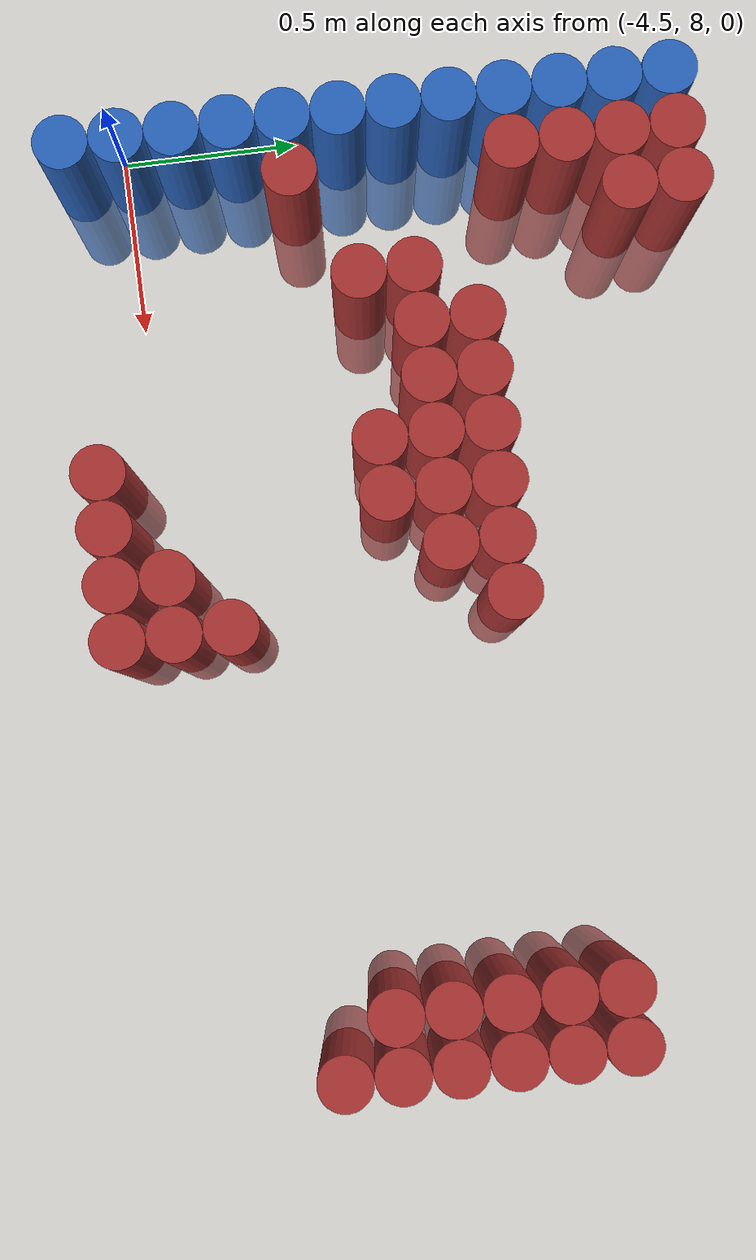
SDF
<sdf version="1.6">
 <world name="default">
  <model name="ground_plane">
   <static>1</static>
   <link name="link">
    <collision name="collision">
     <geometry><plane><normal>0 0 1</normal><size>100 100</size></plane></geometry>
     <surface><friction><ode><mu>100</mu><mu2>50</mu2></ode></friction></surface>
    </collision>
    <visual name="visual">
     <cast_shadows>0</cast_shadows>
     <geometry><plane><normal>0 0 1</normal><size>100 100</size></plane></geometry>
     <material>
      <script><uri>file://media/materials/scripts/gazebo.material</uri><name>Gazebo/Grey</name></script>
     </material>
    </visual>
   </link>
  </model>
  <model name="unit_cylinder_114">
   <static>1</static>
   <pose>-4.425000 7.875000 0.000000 0.000000 0.000000 0.000000</pose>
   <link name="link">
    <inertial>
     <mass>1</mass>
     <inertia><ixx>0.145833</ixx><ixy>0</ixy><ixz>0</ixz><iyy>0.145833</iyy><iyz>0</iyz><izz>0.125</izz></inertia>
    </inertial>
    <collision name="collision">
     <geometry><cylinder><radius>0.075000</radius><length>1</length></cylinder></geometry>
    </collision>
    <visual name="visual">
     <geometry><cylinder><radius>0.075000</radius><length>1</length></cylinder></geometry>
     <material>
      <ambient>0.152000 0.379000 0.720000 1</ambient>
      <diffuse>0.152000 0.379000 0.720000 1</diffuse>
     </material>
     <material>
      <script><name>Gazebo/Grey</name><uri>file://media/materials/scripts/gazebo.material</uri></script>
     </material>
    </visual>
   </link>
  </model>
  <model name="unit_cylinder_115">
   <static>1</static>
   <pose>-4.425000 8.025000 0.000000 0.000000 0.000000 0.000000</pose>
   <link name="link">
    <inertial>
     <mass>1</mass>
     <inertia><ixx>0.145833</ixx><ixy>0</ixy><ixz>0</ixz><iyy>0.145833</iyy><iyz>0</iyz><izz>0.125</izz></inertia>
    </inertial>
    <collision name="collision">
     <geometry><cylinder><radius>0.075000</radius><length>1</length></cylinder></geometry>
    </collision>
    <visual name="visual">
     <geometry><cylinder><radius>0.075000</radius><length>1</length></cylinder></geometry>
     <material>
      <ambient>0.152000 0.379000 0.720000 1</ambient>
      <diffuse>0.152000 0.379000 0.720000 1</diffuse>
     </material>
     <material>
      <script><name>Gazebo/Grey</name><uri>file://media/materials/scripts/gazebo.material</uri></script>
     </material>
    </visual>
   </link>
  </model>
  <model name="unit_cylinder_116">
   <static>1</static>
   <pose>-4.425000 8.175000 0.000000 0.000000 0.000000 0.000000</pose>
   <link name="link">
    <inertial>
     <mass>1</mass>
     <inertia><ixx>0.145833</ixx><ixy>0</ixy><ixz>0</ixz><iyy>0.145833</iyy><iyz>0</iyz><izz>0.125</izz></inertia>
    </inertial>
    <collision name="collision">
     <geometry><cylinder><radius>0.075000</radius><length>1</length></cylinder></geometry>
    </collision>
    <visual name="visual">
     <geometry><cylinder><radius>0.075000</radius><length>1</length></cylinder></geometry>
     <material>
      <ambient>0.152000 0.379000 0.720000 1</ambient>
      <diffuse>0.152000 0.379000 0.720000 1</diffuse>
     </material>
     <material>
      <script><name>Gazebo/Grey</name><uri>file://media/materials/scripts/gazebo.material</uri></script>
     </material>
    </visual>
   </link>
  </model>
  <model name="unit_cylinder_117">
   <static>1</static>
   <pose>-4.425000 8.325000 0.000000 0.000000 0.000000 0.000000</pose>
   <link name="link">
    <inertial>
     <mass>1</mass>
     <inertia><ixx>0.145833</ixx><ixy>0</ixy><ixz>0</ixz><iyy>0.145833</iyy><iyz>0</iyz><izz>0.125</izz></inertia>
    </inertial>
    <collision name="collision">
     <geometry><cylinder><radius>0.075000</radius><length>1</length></cylinder></geometry>
    </collision>
    <visual name="visual">
     <geometry><cylinder><radius>0.075000</radius><length>1</length></cylinder></geometry>
     <material>
      <ambient>0.152000 0.379000 0.720000 1</ambient>
      <diffuse>0.152000 0.379000 0.720000 1</diffuse>
     </material>
     <material>
      <script><name>Gazebo/Grey</name><uri>file://media/materials/scripts/gazebo.material</uri></script>
     </material>
    </visual>
   </link>
  </model>
  <model name="unit_cylinder_118">
   <static>1</static>
   <pose>-4.425000 8.475000 0.000000 0.000000 0.000000 0.000000</pose>
   <link name="link">
    <inertial>
     <mass>1</mass>
     <inertia><ixx>0.145833</ixx><ixy>0</ixy><ixz>0</ixz><iyy>0.145833</iyy><iyz>0</iyz><izz>0.125</izz></inertia>
    </inertial>
    <collision name="collision">
     <geometry><cylinder><radius>0.075000</radius><length>1</length></cylinder></geometry>
    </collision>
    <visual name="visual">
     <geometry><cylinder><radius>0.075000</radius><length>1</length></cylinder></geometry>
     <material>
      <ambient>0.152000 0.379000 0.720000 1</ambient>
      <diffuse>0.152000 0.379000 0.720000 1</diffuse>
     </material>
     <material>
      <script><name>Gazebo/Grey</name><uri>file://media/materials/scripts/gazebo.material</uri></script>
     </material>
    </visual>
   </link>
  </model>
  <model name="unit_cylinder_119">
   <static>1</static>
   <pose>-4.425000 8.625000 0.000000 0.000000 0.000000 0.000000</pose>
   <link name="link">
    <inertial>
     <mass>1</mass>
     <inertia><ixx>0.145833</ixx><ixy>0</ixy><ixz>0</ixz><iyy>0.145833</iyy><iyz>0</iyz><izz>0.125</izz></inertia>
    </inertial>
    <collision name="collision">
     <geometry><cylinder><radius>0.075000</radius><length>1</length></cylinder></geometry>
    </collision>
    <visual name="visual">
     <geometry><cylinder><radius>0.075000</radius><length>1</length></cylinder></geometry>
     <material>
      <ambient>0.152000 0.379000 0.720000 1</ambient>
      <diffuse>0.152000 0.379000 0.720000 1</diffuse>
     </material>
     <material>
      <script><name>Gazebo/Grey</name><uri>file://media/materials/scripts/gazebo.material</uri></script>
     </material>
    </visual>
   </link>
  </model>
  <model name="unit_cylinder_120">
   <static>1</static>
   <pose>-4.425000 8.775000 0.000000 0.000000 0.000000 0.000000</pose>
   <link name="link">
    <inertial>
     <mass>1</mass>
     <inertia><ixx>0.145833</ixx><ixy>0</ixy><ixz>0</ixz><iyy>0.145833</iyy><iyz>0</iyz><izz>0.125</izz></inertia>
    </inertial>
    <collision name="collision">
     <geometry><cylinder><radius>0.075000</radius><length>1</length></cylinder></geometry>
    </collision>
    <visual name="visual">
     <geometry><cylinder><radius>0.075000</radius><length>1</length></cylinder></geometry>
     <material>
      <ambient>0.152000 0.379000 0.720000 1</ambient>
      <diffuse>0.152000 0.379000 0.720000 1</diffuse>
     </material>
     <material>
      <script><name>Gazebo/Grey</name><uri>file://media/materials/scripts/gazebo.material</uri></script>
     </material>
    </visual>
   </link>
  </model>
  <model name="unit_cylinder_121">
   <static>1</static>
   <pose>-4.425000 8.925000 0.000000 0.000000 0.000000 0.000000</pose>
   <link name="link">
    <inertial>
     <mass>1</mass>
     <inertia><ixx>0.145833</ixx><ixy>0</ixy><ixz>0</ixz><iyy>0.145833</iyy><iyz>0</iyz><izz>0.125</izz></inertia>
    </inertial>
    <collision name="collision">
     <geometry><cylinder><radius>0.075000</radius><length>1</length></cylinder></geometry>
    </collision>
    <visual name="visual">
     <geometry><cylinder><radius>0.075000</radius><length>1</length></cylinder></geometry>
     <material>
      <ambient>0.152000 0.379000 0.720000 1</ambient>
      <diffuse>0.152000 0.379000 0.720000 1</diffuse>
     </material>
     <material>
      <script><name>Gazebo/Grey</name><uri>file://media/materials/scripts/gazebo.material</uri></script>
     </material>
    </visual>
   </link>
  </model>
  <model name="unit_cylinder_122">
   <static>1</static>
   <pose>-4.425000 9.075000 0.000000 0.000000 0.000000 0.000000</pose>
   <link name="link">
    <inertial>
     <mass>1</mass>
     <inertia><ixx>0.145833</ixx><ixy>0</ixy><ixz>0</ixz><iyy>0.145833</iyy><iyz>0</iyz><izz>0.125</izz></inertia>
    </inertial>
    <collision name="collision">
     <geometry><cylinder><radius>0.075000</radius><length>1</length></cylinder></geometry>
    </collision>
    <visual name="visual">
     <geometry><cylinder><radius>0.075000</radius><length>1</length></cylinder></geometry>
     <material>
      <ambient>0.152000 0.379000 0.720000 1</ambient>
      <diffuse>0.152000 0.379000 0.720000 1</diffuse>
     </material>
     <material>
      <script><name>Gazebo/Grey</name><uri>file://media/materials/scripts/gazebo.material</uri></script>
     </material>
    </visual>
   </link>
  </model>
  <model name="unit_cylinder_123">
   <static>1</static>
   <pose>-4.425000 9.225000 0.000000 0.000000 0.000000 0.000000</pose>
   <link name="link">
    <inertial>
     <mass>1</mass>
     <inertia><ixx>0.145833</ixx><ixy>0</ixy><ixz>0</ixz><iyy>0.145833</iyy><iyz>0</iyz><izz>0.125</izz></inertia>
    </inertial>
    <collision name="collision">
     <geometry><cylinder><radius>0.075000</radius><length>1</length></cylinder></geometry>
    </collision>
    <visual name="visual">
     <geometry><cylinder><radius>0.075000</radius><length>1</length></cylinder></geometry>
     <material>
      <ambient>0.152000 0.379000 0.720000 1</ambient>
      <diffuse>0.152000 0.379000 0.720000 1</diffuse>
     </material>
     <material>
      <script><name>Gazebo/Grey</name><uri>file://media/materials/scripts/gazebo.material</uri></script>
     </material>
    </visual>
   </link>
  </model>
  <model name="unit_cylinder_124">
   <static>1</static>
   <pose>-4.425000 9.375000 0.000000 0.000000 0.000000 0.000000</pose>
   <link name="link">
    <inertial>
     <mass>1</mass>
     <inertia><ixx>0.145833</ixx><ixy>0</ixy><ixz>0</ixz><iyy>0.145833</iyy><iyz>0</iyz><izz>0.125</izz></inertia>
    </inertial>
    <collision name="collision">
     <geometry><cylinder><radius>0.075000</radius><length>1</length></cylinder></geometry>
    </collision>
    <visual name="visual">
     <geometry><cylinder><radius>0.075000</radius><length>1</length></cylinder></geometry>
     <material>
      <ambient>0.152000 0.379000 0.720000 1</ambient>
      <diffuse>0.152000 0.379000 0.720000 1</diffuse>
     </material>
     <material>
      <script><name>Gazebo/Grey</name><uri>file://media/materials/scripts/gazebo.material</uri></script>
     </material>
    </visual>
   </link>
  </model>
  <model name="unit_cylinder_125">
   <static>1</static>
   <pose>-4.425000 9.525000 0.000000 0.000000 0.000000 0.000000</pose>
   <link name="link">
    <inertial>
     <mass>1</mass>
     <inertia><ixx>0.145833</ixx><ixy>0</ixy><ixz>0</ixz><iyy>0.145833</iyy><iyz>0</iyz><izz>0.125</izz></inertia>
    </inertial>
    <collision name="collision">
     <geometry><cylinder><radius>0.075000</radius><length>1</length></cylinder></geometry>
    </collision>
    <visual name="visual">
     <geometry><cylinder><radius>0.075000</radius><length>1</length></cylinder></geometry>
     <material>
      <ambient>0.152000 0.379000 0.720000 1</ambient>
      <diffuse>0.152000 0.379000 0.720000 1</diffuse>
     </material>
     <material>
      <script><name>Gazebo/Grey</name><uri>file://media/materials/scripts/gazebo.material</uri></script>
     </material>
    </visual>
   </link>
  </model>
  <model name="unit_cylinder_138">
   <static>1</static>
   <pose>-4.275000 8.475000 0.000000 0.000000 0.000000 0.000000</pose>
   <link name="link">
    <inertial>
     <mass>1</mass>
     <inertia><ixx>0.145833</ixx><ixy>0</ixy><ixz>0</ixz><iyy>0.145833</iyy><iyz>0</iyz><izz>0.125</izz></inertia>
    </inertial>
    <collision name="collision">
     <geometry><cylinder><radius>0.075000</radius><length>1</length></cylinder></geometry>
    </collision>
    <visual name="visual">
     <geometry><cylinder><radius>0.075000</radius><length>1</length></cylinder></geometry>
     <material>
      <ambient>0.648000 0.192000 0.192000 1</ambient>
      <diffuse>0.648000 0.192000 0.192000 1</diffuse>
     </material>
     <material>
      <script><name>Gazebo/Grey</name><uri>file://media/materials/scripts/gazebo.material</uri></script>
     </material>
    </visual>
   </link>
  </model>
  <model name="unit_cylinder_139">
   <static>1</static>
   <pose>-4.275000 9.075000 0.000000 0.000000 0.000000 0.000000</pose>
   <link name="link">
    <inertial>
     <mass>1</mass>
     <inertia><ixx>0.145833</ixx><ixy>0</ixy><ixz>0</ixz><iyy>0.145833</iyy><iyz>0</iyz><izz>0.125</izz></inertia>
    </inertial>
    <collision name="collision">
     <geometry><cylinder><radius>0.075000</radius><length>1</length></cylinder></geometry>
    </collision>
    <visual name="visual">
     <geometry><cylinder><radius>0.075000</radius><length>1</length></cylinder></geometry>
     <material>
      <ambient>0.648000 0.192000 0.192000 1</ambient>
      <diffuse>0.648000 0.192000 0.192000 1</diffuse>
     </material>
     <material>
      <script><name>Gazebo/Grey</name><uri>file://media/materials/scripts/gazebo.material</uri></script>
     </material>
    </visual>
   </link>
  </model>
  <model name="unit_cylinder_140">
   <static>1</static>
   <pose>-4.275000 9.225000 0.000000 0.000000 0.000000 0.000000</pose>
   <link name="link">
    <inertial>
     <mass>1</mass>
     <inertia><ixx>0.145833</ixx><ixy>0</ixy><ixz>0</ixz><iyy>0.145833</iyy><iyz>0</iyz><izz>0.125</izz></inertia>
    </inertial>
    <collision name="collision">
     <geometry><cylinder><radius>0.075000</radius><length>1</length></cylinder></geometry>
    </collision>
    <visual name="visual">
     <geometry><cylinder><radius>0.075000</radius><length>1</length></cylinder></geometry>
     <material>
      <ambient>0.648000 0.192000 0.192000 1</ambient>
      <diffuse>0.648000 0.192000 0.192000 1</diffuse>
     </material>
     <material>
      <script><name>Gazebo/Grey</name><uri>file://media/materials/scripts/gazebo.material</uri></script>
     </material>
    </visual>
   </link>
  </model>
  <model name="unit_cylinder_141">
   <static>1</static>
   <pose>-4.275000 9.375000 0.000000 0.000000 0.000000 0.000000</pose>
   <link name="link">
    <inertial>
     <mass>1</mass>
     <inertia><ixx>0.145833</ixx><ixy>0</ixy><ixz>0</ixz><iyy>0.145833</iyy><iyz>0</iyz><izz>0.125</izz></inertia>
    </inertial>
    <collision name="collision">
     <geometry><cylinder><radius>0.075000</radius><length>1</length></cylinder></geometry>
    </collision>
    <visual name="visual">
     <geometry><cylinder><radius>0.075000</radius><length>1</length></cylinder></geometry>
     <material>
      <ambient>0.648000 0.192000 0.192000 1</ambient>
      <diffuse>0.648000 0.192000 0.192000 1</diffuse>
     </material>
     <material>
      <script><name>Gazebo/Grey</name><uri>file://media/materials/scripts/gazebo.material</uri></script>
     </material>
    </visual>
   </link>
  </model>
  <model name="unit_cylinder_142">
   <static>1</static>
   <pose>-4.275000 9.525000 0.000000 0.000000 0.000000 0.000000</pose>
   <link name="link">
    <inertial>
     <mass>1</mass>
     <inertia><ixx>0.145833</ixx><ixy>0</ixy><ixz>0</ixz><iyy>0.145833</iyy><iyz>0</iyz><izz>0.125</izz></inertia>
    </inertial>
    <collision name="collision">
     <geometry><cylinder><radius>0.075000</radius><length>1</length></cylinder></geometry>
    </collision>
    <visual name="visual">
     <geometry><cylinder><radius>0.075000</radius><length>1</length></cylinder></geometry>
     <material>
      <ambient>0.648000 0.192000 0.192000 1</ambient>
      <diffuse>0.648000 0.192000 0.192000 1</diffuse>
     </material>
     <material>
      <script><name>Gazebo/Grey</name><uri>file://media/materials/scripts/gazebo.material</uri></script>
     </material>
    </visual>
   </link>
  </model>
  <model name="unit_cylinder_150">
   <static>1</static>
   <pose>-4.125000 9.375000 0.000000 0.000000 0.000000 0.000000</pose>
   <link name="link">
    <inertial>
     <mass>1</mass>
     <inertia><ixx>0.145833</ixx><ixy>0</ixy><ixz>0</ixz><iyy>0.145833</iyy><iyz>0</iyz><izz>0.125</izz></inertia>
    </inertial>
    <collision name="collision">
     <geometry><cylinder><radius>0.075000</radius><length>1</length></cylinder></geometry>
    </collision>
    <visual name="visual">
     <geometry><cylinder><radius>0.075000</radius><length>1</length></cylinder></geometry>
     <material>
      <ambient>0.648000 0.192000 0.192000 1</ambient>
      <diffuse>0.648000 0.192000 0.192000 1</diffuse>
     </material>
     <material>
      <script><name>Gazebo/Grey</name><uri>file://media/materials/scripts/gazebo.material</uri></script>
     </material>
    </visual>
   </link>
  </model>
  <model name="unit_cylinder_151">
   <static>1</static>
   <pose>-4.125000 9.525000 0.000000 0.000000 0.000000 0.000000</pose>
   <link name="link">
    <inertial>
     <mass>1</mass>
     <inertia><ixx>0.145833</ixx><ixy>0</ixy><ixz>0</ixz><iyy>0.145833</iyy><iyz>0</iyz><izz>0.125</izz></inertia>
    </inertial>
    <collision name="collision">
     <geometry><cylinder><radius>0.075000</radius><length>1</length></cylinder></geometry>
    </collision>
    <visual name="visual">
     <geometry><cylinder><radius>0.075000</radius><length>1</length></cylinder></geometry>
     <material>
      <ambient>0.648000 0.192000 0.192000 1</ambient>
      <diffuse>0.648000 0.192000 0.192000 1</diffuse>
     </material>
     <material>
      <script><name>Gazebo/Grey</name><uri>file://media/materials/scripts/gazebo.material</uri></script>
     </material>
    </visual>
   </link>
  </model>
  <model name="unit_cylinder_156">
   <static>1</static>
   <pose>-3.975000 8.625000 0.000000 0.000000 0.000000 0.000000</pose>
   <link name="link">
    <inertial>
     <mass>1</mass>
     <inertia><ixx>0.145833</ixx><ixy>0</ixy><ixz>0</ixz><iyy>0.145833</iyy><iyz>0</iyz><izz>0.125</izz></inertia>
    </inertial>
    <collision name="collision">
     <geometry><cylinder><radius>0.075000</radius><length>1</length></cylinder></geometry>
    </collision>
    <visual name="visual">
     <geometry><cylinder><radius>0.075000</radius><length>1</length></cylinder></geometry>
     <material>
      <ambient>0.648000 0.192000 0.192000 1</ambient>
      <diffuse>0.648000 0.192000 0.192000 1</diffuse>
     </material>
     <material>
      <script><name>Gazebo/Grey</name><uri>file://media/materials/scripts/gazebo.material</uri></script>
     </material>
    </visual>
   </link>
  </model>
  <model name="unit_cylinder_157">
   <static>1</static>
   <pose>-3.975000 8.775000 0.000000 0.000000 0.000000 0.000000</pose>
   <link name="link">
    <inertial>
     <mass>1</mass>
     <inertia><ixx>0.145833</ixx><ixy>0</ixy><ixz>0</ixz><iyy>0.145833</iyy><iyz>0</iyz><izz>0.125</izz></inertia>
    </inertial>
    <collision name="collision">
     <geometry><cylinder><radius>0.075000</radius><length>1</length></cylinder></geometry>
    </collision>
    <visual name="visual">
     <geometry><cylinder><radius>0.075000</radius><length>1</length></cylinder></geometry>
     <material>
      <ambient>0.648000 0.192000 0.192000 1</ambient>
      <diffuse>0.648000 0.192000 0.192000 1</diffuse>
     </material>
     <material>
      <script><name>Gazebo/Grey</name><uri>file://media/materials/scripts/gazebo.material</uri></script>
     </material>
    </visual>
   </link>
  </model>
  <model name="unit_cylinder_161">
   <static>1</static>
   <pose>-3.825000 8.775000 0.000000 0.000000 0.000000 0.000000</pose>
   <link name="link">
    <inertial>
     <mass>1</mass>
     <inertia><ixx>0.145833</ixx><ixy>0</ixy><ixz>0</ixz><iyy>0.145833</iyy><iyz>0</iyz><izz>0.125</izz></inertia>
    </inertial>
    <collision name="collision">
     <geometry><cylinder><radius>0.075000</radius><length>1</length></cylinder></geometry>
    </collision>
    <visual name="visual">
     <geometry><cylinder><radius>0.075000</radius><length>1</length></cylinder></geometry>
     <material>
      <ambient>0.648000 0.192000 0.192000 1</ambient>
      <diffuse>0.648000 0.192000 0.192000 1</diffuse>
     </material>
     <material>
      <script><name>Gazebo/Grey</name><uri>file://media/materials/scripts/gazebo.material</uri></script>
     </material>
    </visual>
   </link>
  </model>
  <model name="unit_cylinder_162">
   <static>1</static>
   <pose>-3.825000 8.925000 0.000000 0.000000 0.000000 0.000000</pose>
   <link name="link">
    <inertial>
     <mass>1</mass>
     <inertia><ixx>0.145833</ixx><ixy>0</ixy><ixz>0</ixz><iyy>0.145833</iyy><iyz>0</iyz><izz>0.125</izz></inertia>
    </inertial>
    <collision name="collision">
     <geometry><cylinder><radius>0.075000</radius><length>1</length></cylinder></geometry>
    </collision>
    <visual name="visual">
     <geometry><cylinder><radius>0.075000</radius><length>1</length></cylinder></geometry>
     <material>
      <ambient>0.648000 0.192000 0.192000 1</ambient>
      <diffuse>0.648000 0.192000 0.192000 1</diffuse>
     </material>
     <material>
      <script><name>Gazebo/Grey</name><uri>file://media/materials/scripts/gazebo.material</uri></script>
     </material>
    </visual>
   </link>
  </model>
  <model name="unit_cylinder_170">
   <static>1</static>
   <pose>-3.675000 8.775000 0.000000 0.000000 0.000000 0.000000</pose>
   <link name="link">
    <inertial>
     <mass>1</mass>
     <inertia><ixx>0.145833</ixx><ixy>0</ixy><ixz>0</ixz><iyy>0.145833</iyy><iyz>0</iyz><izz>0.125</izz></inertia>
    </inertial>
    <collision name="collision">
     <geometry><cylinder><radius>0.075000</radius><length>1</length></cylinder></geometry>
    </collision>
    <visual name="visual">
     <geometry><cylinder><radius>0.075000</radius><length>1</length></cylinder></geometry>
     <material>
      <ambient>0.648000 0.192000 0.192000 1</ambient>
      <diffuse>0.648000 0.192000 0.192000 1</diffuse>
     </material>
     <material>
      <script><name>Gazebo/Grey</name><uri>file://media/materials/scripts/gazebo.material</uri></script>
     </material>
    </visual>
   </link>
  </model>
  <model name="unit_cylinder_171">
   <static>1</static>
   <pose>-3.675000 8.925000 0.000000 0.000000 0.000000 0.000000</pose>
   <link name="link">
    <inertial>
     <mass>1</mass>
     <inertia><ixx>0.145833</ixx><ixy>0</ixy><ixz>0</ixz><iyy>0.145833</iyy><iyz>0</iyz><izz>0.125</izz></inertia>
    </inertial>
    <collision name="collision">
     <geometry><cylinder><radius>0.075000</radius><length>1</length></cylinder></geometry>
    </collision>
    <visual name="visual">
     <geometry><cylinder><radius>0.075000</radius><length>1</length></cylinder></geometry>
     <material>
      <ambient>0.648000 0.192000 0.192000 1</ambient>
      <diffuse>0.648000 0.192000 0.192000 1</diffuse>
     </material>
     <material>
      <script><name>Gazebo/Grey</name><uri>file://media/materials/scripts/gazebo.material</uri></script>
     </material>
    </visual>
   </link>
  </model>
  <model name="unit_cylinder_182">
   <static>1</static>
   <pose>-3.525000 7.875000 0.000000 0.000000 0.000000 0.000000</pose>
   <link name="link">
    <inertial>
     <mass>1</mass>
     <inertia><ixx>0.145833</ixx><ixy>0</ixy><ixz>0</ixz><iyy>0.145833</iyy><iyz>0</iyz><izz>0.125</izz></inertia>
    </inertial>
    <collision name="collision">
     <geometry><cylinder><radius>0.075000</radius><length>1</length></cylinder></geometry>
    </collision>
    <visual name="visual">
     <geometry><cylinder><radius>0.075000</radius><length>1</length></cylinder></geometry>
     <material>
      <ambient>0.648000 0.192000 0.192000 1</ambient>
      <diffuse>0.648000 0.192000 0.192000 1</diffuse>
     </material>
     <material>
      <script><name>Gazebo/Grey</name><uri>file://media/materials/scripts/gazebo.material</uri></script>
     </material>
    </visual>
   </link>
  </model>
  <model name="unit_cylinder_183">
   <static>1</static>
   <pose>-3.525000 8.625000 0.000000 0.000000 0.000000 0.000000</pose>
   <link name="link">
    <inertial>
     <mass>1</mass>
     <inertia><ixx>0.145833</ixx><ixy>0</ixy><ixz>0</ixz><iyy>0.145833</iyy><iyz>0</iyz><izz>0.125</izz></inertia>
    </inertial>
    <collision name="collision">
     <geometry><cylinder><radius>0.075000</radius><length>1</length></cylinder></geometry>
    </collision>
    <visual name="visual">
     <geometry><cylinder><radius>0.075000</radius><length>1</length></cylinder></geometry>
     <material>
      <ambient>0.648000 0.192000 0.192000 1</ambient>
      <diffuse>0.648000 0.192000 0.192000 1</diffuse>
     </material>
     <material>
      <script><name>Gazebo/Grey</name><uri>file://media/materials/scripts/gazebo.material</uri></script>
     </material>
    </visual>
   </link>
  </model>
  <model name="unit_cylinder_184">
   <static>1</static>
   <pose>-3.525000 8.775000 0.000000 0.000000 0.000000 0.000000</pose>
   <link name="link">
    <inertial>
     <mass>1</mass>
     <inertia><ixx>0.145833</ixx><ixy>0</ixy><ixz>0</ixz><iyy>0.145833</iyy><iyz>0</iyz><izz>0.125</izz></inertia>
    </inertial>
    <collision name="collision">
     <geometry><cylinder><radius>0.075000</radius><length>1</length></cylinder></geometry>
    </collision>
    <visual name="visual">
     <geometry><cylinder><radius>0.075000</radius><length>1</length></cylinder></geometry>
     <material>
      <ambient>0.648000 0.192000 0.192000 1</ambient>
      <diffuse>0.648000 0.192000 0.192000 1</diffuse>
     </material>
     <material>
      <script><name>Gazebo/Grey</name><uri>file://media/materials/scripts/gazebo.material</uri></script>
     </material>
    </visual>
   </link>
  </model>
  <model name="unit_cylinder_185">
   <static>1</static>
   <pose>-3.525000 8.925000 0.000000 0.000000 0.000000 0.000000</pose>
   <link name="link">
    <inertial>
     <mass>1</mass>
     <inertia><ixx>0.145833</ixx><ixy>0</ixy><ixz>0</ixz><iyy>0.145833</iyy><iyz>0</iyz><izz>0.125</izz></inertia>
    </inertial>
    <collision name="collision">
     <geometry><cylinder><radius>0.075000</radius><length>1</length></cylinder></geometry>
    </collision>
    <visual name="visual">
     <geometry><cylinder><radius>0.075000</radius><length>1</length></cylinder></geometry>
     <material>
      <ambient>0.648000 0.192000 0.192000 1</ambient>
      <diffuse>0.648000 0.192000 0.192000 1</diffuse>
     </material>
     <material>
      <script><name>Gazebo/Grey</name><uri>file://media/materials/scripts/gazebo.material</uri></script>
     </material>
    </visual>
   </link>
  </model>
  <model name="unit_cylinder_194">
   <static>1</static>
   <pose>-3.375000 7.875000 0.000000 0.000000 0.000000 0.000000</pose>
   <link name="link">
    <inertial>
     <mass>1</mass>
     <inertia><ixx>0.145833</ixx><ixy>0</ixy><ixz>0</ixz><iyy>0.145833</iyy><iyz>0</iyz><izz>0.125</izz></inertia>
    </inertial>
    <collision name="collision">
     <geometry><cylinder><radius>0.075000</radius><length>1</length></cylinder></geometry>
    </collision>
    <visual name="visual">
     <geometry><cylinder><radius>0.075000</radius><length>1</length></cylinder></geometry>
     <material>
      <ambient>0.648000 0.192000 0.192000 1</ambient>
      <diffuse>0.648000 0.192000 0.192000 1</diffuse>
     </material>
     <material>
      <script><name>Gazebo/Grey</name><uri>file://media/materials/scripts/gazebo.material</uri></script>
     </material>
    </visual>
   </link>
  </model>
  <model name="unit_cylinder_195">
   <static>1</static>
   <pose>-3.375000 8.625000 0.000000 0.000000 0.000000 0.000000</pose>
   <link name="link">
    <inertial>
     <mass>1</mass>
     <inertia><ixx>0.145833</ixx><ixy>0</ixy><ixz>0</ixz><iyy>0.145833</iyy><iyz>0</iyz><izz>0.125</izz></inertia>
    </inertial>
    <collision name="collision">
     <geometry><cylinder><radius>0.075000</radius><length>1</length></cylinder></geometry>
    </collision>
    <visual name="visual">
     <geometry><cylinder><radius>0.075000</radius><length>1</length></cylinder></geometry>
     <material>
      <ambient>0.648000 0.192000 0.192000 1</ambient>
      <diffuse>0.648000 0.192000 0.192000 1</diffuse>
     </material>
     <material>
      <script><name>Gazebo/Grey</name><uri>file://media/materials/scripts/gazebo.material</uri></script>
     </material>
    </visual>
   </link>
  </model>
  <model name="unit_cylinder_196">
   <static>1</static>
   <pose>-3.375000 8.775000 0.000000 0.000000 0.000000 0.000000</pose>
   <link name="link">
    <inertial>
     <mass>1</mass>
     <inertia><ixx>0.145833</ixx><ixy>0</ixy><ixz>0</ixz><iyy>0.145833</iyy><iyz>0</iyz><izz>0.125</izz></inertia>
    </inertial>
    <collision name="collision">
     <geometry><cylinder><radius>0.075000</radius><length>1</length></cylinder></geometry>
    </collision>
    <visual name="visual">
     <geometry><cylinder><radius>0.075000</radius><length>1</length></cylinder></geometry>
     <material>
      <ambient>0.648000 0.192000 0.192000 1</ambient>
      <diffuse>0.648000 0.192000 0.192000 1</diffuse>
     </material>
     <material>
      <script><name>Gazebo/Grey</name><uri>file://media/materials/scripts/gazebo.material</uri></script>
     </material>
    </visual>
   </link>
  </model>
  <model name="unit_cylinder_197">
   <static>1</static>
   <pose>-3.375000 8.925000 0.000000 0.000000 0.000000 0.000000</pose>
   <link name="link">
    <inertial>
     <mass>1</mass>
     <inertia><ixx>0.145833</ixx><ixy>0</ixy><ixz>0</ixz><iyy>0.145833</iyy><iyz>0</iyz><izz>0.125</izz></inertia>
    </inertial>
    <collision name="collision">
     <geometry><cylinder><radius>0.075000</radius><length>1</length></cylinder></geometry>
    </collision>
    <visual name="visual">
     <geometry><cylinder><radius>0.075000</radius><length>1</length></cylinder></geometry>
     <material>
      <ambient>0.648000 0.192000 0.192000 1</ambient>
      <diffuse>0.648000 0.192000 0.192000 1</diffuse>
     </material>
     <material>
      <script><name>Gazebo/Grey</name><uri>file://media/materials/scripts/gazebo.material</uri></script>
     </material>
    </visual>
   </link>
  </model>
  <model name="unit_cylinder_202">
   <static>1</static>
   <pose>-3.225000 7.875000 0.000000 0.000000 0.000000 0.000000</pose>
   <link name="link">
    <inertial>
     <mass>1</mass>
     <inertia><ixx>0.145833</ixx><ixy>0</ixy><ixz>0</ixz><iyy>0.145833</iyy><iyz>0</iyz><izz>0.125</izz></inertia>
    </inertial>
    <collision name="collision">
     <geometry><cylinder><radius>0.075000</radius><length>1</length></cylinder></geometry>
    </collision>
    <visual name="visual">
     <geometry><cylinder><radius>0.075000</radius><length>1</length></cylinder></geometry>
     <material>
      <ambient>0.648000 0.192000 0.192000 1</ambient>
      <diffuse>0.648000 0.192000 0.192000 1</diffuse>
     </material>
     <material>
      <script><name>Gazebo/Grey</name><uri>file://media/materials/scripts/gazebo.material</uri></script>
     </material>
    </visual>
   </link>
  </model>
  <model name="unit_cylinder_203">
   <static>1</static>
   <pose>-3.225000 8.025000 0.000000 0.000000 0.000000 0.000000</pose>
   <link name="link">
    <inertial>
     <mass>1</mass>
     <inertia><ixx>0.145833</ixx><ixy>0</ixy><ixz>0</ixz><iyy>0.145833</iyy><iyz>0</iyz><izz>0.125</izz></inertia>
    </inertial>
    <collision name="collision">
     <geometry><cylinder><radius>0.075000</radius><length>1</length></cylinder></geometry>
    </collision>
    <visual name="visual">
     <geometry><cylinder><radius>0.075000</radius><length>1</length></cylinder></geometry>
     <material>
      <ambient>0.648000 0.192000 0.192000 1</ambient>
      <diffuse>0.648000 0.192000 0.192000 1</diffuse>
     </material>
     <material>
      <script><name>Gazebo/Grey</name><uri>file://media/materials/scripts/gazebo.material</uri></script>
     </material>
    </visual>
   </link>
  </model>
  <model name="unit_cylinder_204">
   <static>1</static>
   <pose>-3.225000 8.775000 0.000000 0.000000 0.000000 0.000000</pose>
   <link name="link">
    <inertial>
     <mass>1</mass>
     <inertia><ixx>0.145833</ixx><ixy>0</ixy><ixz>0</ixz><iyy>0.145833</iyy><iyz>0</iyz><izz>0.125</izz></inertia>
    </inertial>
    <collision name="collision">
     <geometry><cylinder><radius>0.075000</radius><length>1</length></cylinder></geometry>
    </collision>
    <visual name="visual">
     <geometry><cylinder><radius>0.075000</radius><length>1</length></cylinder></geometry>
     <material>
      <ambient>0.648000 0.192000 0.192000 1</ambient>
      <diffuse>0.648000 0.192000 0.192000 1</diffuse>
     </material>
     <material>
      <script><name>Gazebo/Grey</name><uri>file://media/materials/scripts/gazebo.material</uri></script>
     </material>
    </visual>
   </link>
  </model>
  <model name="unit_cylinder_205">
   <static>1</static>
   <pose>-3.225000 8.925000 0.000000 0.000000 0.000000 0.000000</pose>
   <link name="link">
    <inertial>
     <mass>1</mass>
     <inertia><ixx>0.145833</ixx><ixy>0</ixy><ixz>0</ixz><iyy>0.145833</iyy><iyz>0</iyz><izz>0.125</izz></inertia>
    </inertial>
    <collision name="collision">
     <geometry><cylinder><radius>0.075000</radius><length>1</length></cylinder></geometry>
    </collision>
    <visual name="visual">
     <geometry><cylinder><radius>0.075000</radius><length>1</length></cylinder></geometry>
     <material>
      <ambient>0.648000 0.192000 0.192000 1</ambient>
      <diffuse>0.648000 0.192000 0.192000 1</diffuse>
     </material>
     <material>
      <script><name>Gazebo/Grey</name><uri>file://media/materials/scripts/gazebo.material</uri></script>
     </material>
    </visual>
   </link>
  </model>
  <model name="unit_cylinder_207">
   <static>1</static>
   <pose>-3.075000 7.875000 0.000000 0.000000 0.000000 0.000000</pose>
   <link name="link">
    <inertial>
     <mass>1</mass>
     <inertia><ixx>0.145833</ixx><ixy>0</ixy><ixz>0</ixz><iyy>0.145833</iyy><iyz>0</iyz><izz>0.125</izz></inertia>
    </inertial>
    <collision name="collision">
     <geometry><cylinder><radius>0.075000</radius><length>1</length></cylinder></geometry>
    </collision>
    <visual name="visual">
     <geometry><cylinder><radius>0.075000</radius><length>1</length></cylinder></geometry>
     <material>
      <ambient>0.648000 0.192000 0.192000 1</ambient>
      <diffuse>0.648000 0.192000 0.192000 1</diffuse>
     </material>
     <material>
      <script><name>Gazebo/Grey</name><uri>file://media/materials/scripts/gazebo.material</uri></script>
     </material>
    </visual>
   </link>
  </model>
  <model name="unit_cylinder_208">
   <static>1</static>
   <pose>-3.075000 8.025000 0.000000 0.000000 0.000000 0.000000</pose>
   <link name="link">
    <inertial>
     <mass>1</mass>
     <inertia><ixx>0.145833</ixx><ixy>0</ixy><ixz>0</ixz><iyy>0.145833</iyy><iyz>0</iyz><izz>0.125</izz></inertia>
    </inertial>
    <collision name="collision">
     <geometry><cylinder><radius>0.075000</radius><length>1</length></cylinder></geometry>
    </collision>
    <visual name="visual">
     <geometry><cylinder><radius>0.075000</radius><length>1</length></cylinder></geometry>
     <material>
      <ambient>0.648000 0.192000 0.192000 1</ambient>
      <diffuse>0.648000 0.192000 0.192000 1</diffuse>
     </material>
     <material>
      <script><name>Gazebo/Grey</name><uri>file://media/materials/scripts/gazebo.material</uri></script>
     </material>
    </visual>
   </link>
  </model>
  <model name="unit_cylinder_209">
   <static>1</static>
   <pose>-3.075000 8.175000 0.000000 0.000000 0.000000 0.000000</pose>
   <link name="link">
    <inertial>
     <mass>1</mass>
     <inertia><ixx>0.145833</ixx><ixy>0</ixy><ixz>0</ixz><iyy>0.145833</iyy><iyz>0</iyz><izz>0.125</izz></inertia>
    </inertial>
    <collision name="collision">
     <geometry><cylinder><radius>0.075000</radius><length>1</length></cylinder></geometry>
    </collision>
    <visual name="visual">
     <geometry><cylinder><radius>0.075000</radius><length>1</length></cylinder></geometry>
     <material>
      <ambient>0.648000 0.192000 0.192000 1</ambient>
      <diffuse>0.648000 0.192000 0.192000 1</diffuse>
     </material>
     <material>
      <script><name>Gazebo/Grey</name><uri>file://media/materials/scripts/gazebo.material</uri></script>
     </material>
    </visual>
   </link>
  </model>
  <model name="unit_cylinder_210">
   <static>1</static>
   <pose>-3.075000 8.925000 0.000000 0.000000 0.000000 0.000000</pose>
   <link name="link">
    <inertial>
     <mass>1</mass>
     <inertia><ixx>0.145833</ixx><ixy>0</ixy><ixz>0</ixz><iyy>0.145833</iyy><iyz>0</iyz><izz>0.125</izz></inertia>
    </inertial>
    <collision name="collision">
     <geometry><cylinder><radius>0.075000</radius><length>1</length></cylinder></geometry>
    </collision>
    <visual name="visual">
     <geometry><cylinder><radius>0.075000</radius><length>1</length></cylinder></geometry>
     <material>
      <ambient>0.648000 0.192000 0.192000 1</ambient>
      <diffuse>0.648000 0.192000 0.192000 1</diffuse>
     </material>
     <material>
      <script><name>Gazebo/Grey</name><uri>file://media/materials/scripts/gazebo.material</uri></script>
     </material>
    </visual>
   </link>
  </model>
  <model name="unit_cylinder_230">
   <static>1</static>
   <pose>-2.025000 8.475000 0.000000 0.000000 0.000000 0.000000</pose>
   <link name="link">
    <inertial>
     <mass>1</mass>
     <inertia><ixx>0.145833</ixx><ixy>0</ixy><ixz>0</ixz><iyy>0.145833</iyy><iyz>0</iyz><izz>0.125</izz></inertia>
    </inertial>
    <collision name="collision">
     <geometry><cylinder><radius>0.075000</radius><length>1</length></cylinder></geometry>
    </collision>
    <visual name="visual">
     <geometry><cylinder><radius>0.075000</radius><length>1</length></cylinder></geometry>
     <material>
      <ambient>0.648000 0.192000 0.192000 1</ambient>
      <diffuse>0.648000 0.192000 0.192000 1</diffuse>
     </material>
     <material>
      <script><name>Gazebo/Grey</name><uri>file://media/materials/scripts/gazebo.material</uri></script>
     </material>
    </visual>
   </link>
  </model>
  <model name="unit_cylinder_231">
   <static>1</static>
   <pose>-2.025000 8.625000 0.000000 0.000000 0.000000 0.000000</pose>
   <link name="link">
    <inertial>
     <mass>1</mass>
     <inertia><ixx>0.145833</ixx><ixy>0</ixy><ixz>0</ixz><iyy>0.145833</iyy><iyz>0</iyz><izz>0.125</izz></inertia>
    </inertial>
    <collision name="collision">
     <geometry><cylinder><radius>0.075000</radius><length>1</length></cylinder></geometry>
    </collision>
    <visual name="visual">
     <geometry><cylinder><radius>0.075000</radius><length>1</length></cylinder></geometry>
     <material>
      <ambient>0.648000 0.192000 0.192000 1</ambient>
      <diffuse>0.648000 0.192000 0.192000 1</diffuse>
     </material>
     <material>
      <script><name>Gazebo/Grey</name><uri>file://media/materials/scripts/gazebo.material</uri></script>
     </material>
    </visual>
   </link>
  </model>
  <model name="unit_cylinder_232">
   <static>1</static>
   <pose>-2.025000 8.775000 0.000000 0.000000 0.000000 0.000000</pose>
   <link name="link">
    <inertial>
     <mass>1</mass>
     <inertia><ixx>0.145833</ixx><ixy>0</ixy><ixz>0</ixz><iyy>0.145833</iyy><iyz>0</iyz><izz>0.125</izz></inertia>
    </inertial>
    <collision name="collision">
     <geometry><cylinder><radius>0.075000</radius><length>1</length></cylinder></geometry>
    </collision>
    <visual name="visual">
     <geometry><cylinder><radius>0.075000</radius><length>1</length></cylinder></geometry>
     <material>
      <ambient>0.648000 0.192000 0.192000 1</ambient>
      <diffuse>0.648000 0.192000 0.192000 1</diffuse>
     </material>
     <material>
      <script><name>Gazebo/Grey</name><uri>file://media/materials/scripts/gazebo.material</uri></script>
     </material>
    </visual>
   </link>
  </model>
  <model name="unit_cylinder_233">
   <static>1</static>
   <pose>-2.025000 8.925000 0.000000 0.000000 0.000000 0.000000</pose>
   <link name="link">
    <inertial>
     <mass>1</mass>
     <inertia><ixx>0.145833</ixx><ixy>0</ixy><ixz>0</ixz><iyy>0.145833</iyy><iyz>0</iyz><izz>0.125</izz></inertia>
    </inertial>
    <collision name="collision">
     <geometry><cylinder><radius>0.075000</radius><length>1</length></cylinder></geometry>
    </collision>
    <visual name="visual">
     <geometry><cylinder><radius>0.075000</radius><length>1</length></cylinder></geometry>
     <material>
      <ambient>0.648000 0.192000 0.192000 1</ambient>
      <diffuse>0.648000 0.192000 0.192000 1</diffuse>
     </material>
     <material>
      <script><name>Gazebo/Grey</name><uri>file://media/materials/scripts/gazebo.material</uri></script>
     </material>
    </visual>
   </link>
  </model>
  <model name="unit_cylinder_234">
   <static>1</static>
   <pose>-2.025000 9.075000 0.000000 0.000000 0.000000 0.000000</pose>
   <link name="link">
    <inertial>
     <mass>1</mass>
     <inertia><ixx>0.145833</ixx><ixy>0</ixy><ixz>0</ixz><iyy>0.145833</iyy><iyz>0</iyz><izz>0.125</izz></inertia>
    </inertial>
    <collision name="collision">
     <geometry><cylinder><radius>0.075000</radius><length>1</length></cylinder></geometry>
    </collision>
    <visual name="visual">
     <geometry><cylinder><radius>0.075000</radius><length>1</length></cylinder></geometry>
     <material>
      <ambient>0.648000 0.192000 0.192000 1</ambient>
      <diffuse>0.648000 0.192000 0.192000 1</diffuse>
     </material>
     <material>
      <script><name>Gazebo/Grey</name><uri>file://media/materials/scripts/gazebo.material</uri></script>
     </material>
    </visual>
   </link>
  </model>
  <model name="unit_cylinder_237">
   <static>1</static>
   <pose>-1.875000 8.325000 0.000000 0.000000 0.000000 0.000000</pose>
   <link name="link">
    <inertial>
     <mass>1</mass>
     <inertia><ixx>0.145833</ixx><ixy>0</ixy><ixz>0</ixz><iyy>0.145833</iyy><iyz>0</iyz><izz>0.125</izz></inertia>
    </inertial>
    <collision name="collision">
     <geometry><cylinder><radius>0.075000</radius><length>1</length></cylinder></geometry>
    </collision>
    <visual name="visual">
     <geometry><cylinder><radius>0.075000</radius><length>1</length></cylinder></geometry>
     <material>
      <ambient>0.648000 0.192000 0.192000 1</ambient>
      <diffuse>0.648000 0.192000 0.192000 1</diffuse>
     </material>
     <material>
      <script><name>Gazebo/Grey</name><uri>file://media/materials/scripts/gazebo.material</uri></script>
     </material>
    </visual>
   </link>
  </model>
  <model name="unit_cylinder_238">
   <static>1</static>
   <pose>-1.875000 8.475000 0.000000 0.000000 0.000000 0.000000</pose>
   <link name="link">
    <inertial>
     <mass>1</mass>
     <inertia><ixx>0.145833</ixx><ixy>0</ixy><ixz>0</ixz><iyy>0.145833</iyy><iyz>0</iyz><izz>0.125</izz></inertia>
    </inertial>
    <collision name="collision">
     <geometry><cylinder><radius>0.075000</radius><length>1</length></cylinder></geometry>
    </collision>
    <visual name="visual">
     <geometry><cylinder><radius>0.075000</radius><length>1</length></cylinder></geometry>
     <material>
      <ambient>0.648000 0.192000 0.192000 1</ambient>
      <diffuse>0.648000 0.192000 0.192000 1</diffuse>
     </material>
     <material>
      <script><name>Gazebo/Grey</name><uri>file://media/materials/scripts/gazebo.material</uri></script>
     </material>
    </visual>
   </link>
  </model>
  <model name="unit_cylinder_239">
   <static>1</static>
   <pose>-1.875000 8.625000 0.000000 0.000000 0.000000 0.000000</pose>
   <link name="link">
    <inertial>
     <mass>1</mass>
     <inertia><ixx>0.145833</ixx><ixy>0</ixy><ixz>0</ixz><iyy>0.145833</iyy><iyz>0</iyz><izz>0.125</izz></inertia>
    </inertial>
    <collision name="collision">
     <geometry><cylinder><radius>0.075000</radius><length>1</length></cylinder></geometry>
    </collision>
    <visual name="visual">
     <geometry><cylinder><radius>0.075000</radius><length>1</length></cylinder></geometry>
     <material>
      <ambient>0.648000 0.192000 0.192000 1</ambient>
      <diffuse>0.648000 0.192000 0.192000 1</diffuse>
     </material>
     <material>
      <script><name>Gazebo/Grey</name><uri>file://media/materials/scripts/gazebo.material</uri></script>
     </material>
    </visual>
   </link>
  </model>
  <model name="unit_cylinder_240">
   <static>1</static>
   <pose>-1.875000 8.775000 0.000000 0.000000 0.000000 0.000000</pose>
   <link name="link">
    <inertial>
     <mass>1</mass>
     <inertia><ixx>0.145833</ixx><ixy>0</ixy><ixz>0</ixz><iyy>0.145833</iyy><iyz>0</iyz><izz>0.125</izz></inertia>
    </inertial>
    <collision name="collision">
     <geometry><cylinder><radius>0.075000</radius><length>1</length></cylinder></geometry>
    </collision>
    <visual name="visual">
     <geometry><cylinder><radius>0.075000</radius><length>1</length></cylinder></geometry>
     <material>
      <ambient>0.648000 0.192000 0.192000 1</ambient>
      <diffuse>0.648000 0.192000 0.192000 1</diffuse>
     </material>
     <material>
      <script><name>Gazebo/Grey</name><uri>file://media/materials/scripts/gazebo.material</uri></script>
     </material>
    </visual>
   </link>
  </model>
  <model name="unit_cylinder_241">
   <static>1</static>
   <pose>-1.875000 8.925000 0.000000 0.000000 0.000000 0.000000</pose>
   <link name="link">
    <inertial>
     <mass>1</mass>
     <inertia><ixx>0.145833</ixx><ixy>0</ixy><ixz>0</ixz><iyy>0.145833</iyy><iyz>0</iyz><izz>0.125</izz></inertia>
    </inertial>
    <collision name="collision">
     <geometry><cylinder><radius>0.075000</radius><length>1</length></cylinder></geometry>
    </collision>
    <visual name="visual">
     <geometry><cylinder><radius>0.075000</radius><length>1</length></cylinder></geometry>
     <material>
      <ambient>0.648000 0.192000 0.192000 1</ambient>
      <diffuse>0.648000 0.192000 0.192000 1</diffuse>
     </material>
     <material>
      <script><name>Gazebo/Grey</name><uri>file://media/materials/scripts/gazebo.material</uri></script>
     </material>
    </visual>
   </link>
  </model>
  <model name="unit_cylinder_242">
   <static>1</static>
   <pose>-1.875000 9.075000 0.000000 0.000000 0.000000 0.000000</pose>
   <link name="link">
    <inertial>
     <mass>1</mass>
     <inertia><ixx>0.145833</ixx><ixy>0</ixy><ixz>0</ixz><iyy>0.145833</iyy><iyz>0</iyz><izz>0.125</izz></inertia>
    </inertial>
    <collision name="collision">
     <geometry><cylinder><radius>0.075000</radius><length>1</length></cylinder></geometry>
    </collision>
    <visual name="visual">
     <geometry><cylinder><radius>0.075000</radius><length>1</length></cylinder></geometry>
     <material>
      <ambient>0.648000 0.192000 0.192000 1</ambient>
      <diffuse>0.648000 0.192000 0.192000 1</diffuse>
     </material>
     <material>
      <script><name>Gazebo/Grey</name><uri>file://media/materials/scripts/gazebo.material</uri></script>
     </material>
    </visual>
   </link>
  </model>
 </world>
</sdf>
